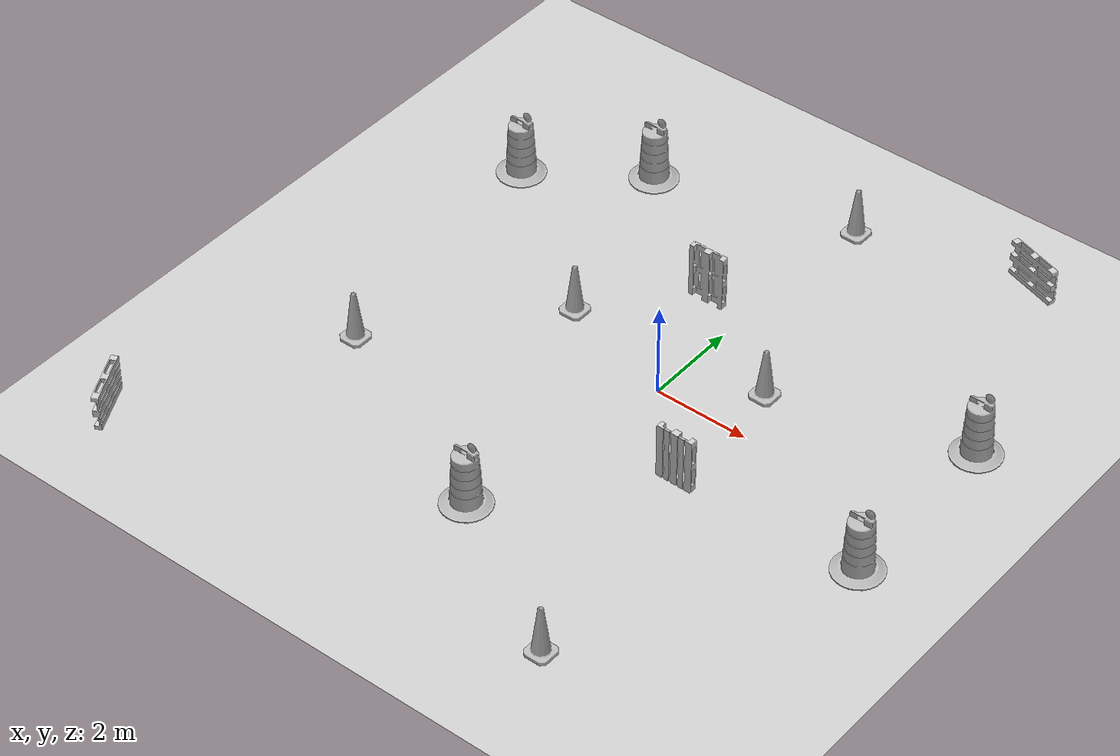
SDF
<sdf version="1.7">
 <world name="default">
  <light name="sun" type="directional">
   <pose>0 0 10 0 -0 0</pose>
   <diffuse>0.8 0.8 0.8 1</diffuse>
   <specular>0.2 0.2 0.2 1</specular>
   <attenuation>
    <range>1000</range>
    <constant>0.9</constant>
    <linear>0.01</linear>
    <quadratic>0.001</quadratic>
   </attenuation>
   <direction>-0.5 0.1 -0.9</direction>
   <spot><inner_angle>0</inner_angle><outer_angle>0</outer_angle><falloff>0</falloff></spot>
  </light>
  <model name="ground_plane">
   <static>1</static>
   <link name="link">
    <collision name="collision">
     <geometry><plane><normal>0 0 1</normal><size>100 100</size></plane></geometry>
     <surface><friction><ode><mu>100</mu><mu2>50</mu2></ode></friction></surface>
    </collision>
    <visual name="visual">
     <cast_shadows>0</cast_shadows>
     <geometry><plane><normal>0 0 1</normal><size>100 100</size></plane></geometry>
     <material>
      <script><uri>file://media/materials/scripts/gazebo.material</uri><name>Gazebo/Grey</name></script>
     </material>
    </visual>
   </link>
  </model>
  <gravity>0 0 -9.8</gravity>
  <magnetic_field>6e-06 2.3e-05 -4.2e-05</magnetic_field>
  <atmosphere type="adiabatic"/>
  <physics type="ode">
   <max_step_size>0.001</max_step_size>
   <real_time_factor>1</real_time_factor>
   <real_time_update_rate>1000</real_time_update_rate>
  </physics>
  <scene><ambient>0.4 0.4 0.4 1</ambient><background>0.7 0.7 0.7 1</background><shadows>1</shadows></scene>
  <audio><device>default</device></audio>
  <spherical_coordinates>
   <surface_model>EARTH_WGS84</surface_model>
   <latitude_deg>0</latitude_deg>
   <longitude_deg>0</longitude_deg>
   <elevation>0</elevation>
   <heading_deg>0</heading_deg>
  </spherical_coordinates>
  <model name="euro_pallet">
   <link name="link">
    <inertial>
     <mass>20</mass>
     <inertia><ixx>2.43</ixx><ixy>0</ixy><ixz>0</ixz><iyy>1.1</iyy><iyz>0</iyz><izz>3.47</izz></inertia>
    </inertial>
    <collision name="collision">
     <pose>0 0 0.05 0 -0 0</pose>
     <geometry><mesh><uri>model://euro_pallet/meshes/pallet.dae</uri><scale>0.1 0.1 0.1</scale></mesh></geometry>
    </collision>
    <visual name="visual">
     <pose>0 0 0.05 0 -0 0</pose>
     <geometry><mesh><uri>model://euro_pallet/meshes/pallet.dae</uri><scale>0.1 0.1 0.1</scale></mesh></geometry>
    </visual>
   </link>
   <pose>1.71967 -1.7044 0.599998 1.5708 4e-06 -0.014009</pose>
  </model>
  <model name="euro_pallet_0">
   <link name="link">
    <inertial>
     <mass>20</mass>
     <inertia><ixx>2.43</ixx><ixy>0</ixy><ixz>0</ixz><iyy>1.1</iyy><iyz>0</iyz><izz>3.47</izz></inertia>
    </inertial>
    <collision name="collision">
     <pose>0 0 0.05 0 -0 0</pose>
     <geometry><mesh><uri>model://euro_pallet/meshes/pallet.dae</uri><scale>0.1 0.1 0.1</scale></mesh></geometry>
    </collision>
    <visual name="visual">
     <pose>0 0 0.05 0 -0 0</pose>
     <geometry><mesh><uri>model://euro_pallet/meshes/pallet.dae</uri><scale>0.1 0.1 0.1</scale></mesh></geometry>
    </visual>
   </link>
   <pose>-0.866377 2.64009 0.59999 -1.57079 -0 -0.013516</pose>
  </model>
  <model name="Construction Barrel">
   <link name="link">
    <inertial>
     <pose>0 0 0.4 0 -0 0</pose>
     <mass>500</mass>
     <inertia><ixx>51.2096</ixx><iyy>51.2096</iyy><izz>25</izz><ixy>0</ixy><ixz>0</ixz><iyz>0</iyz></inertia>
    </inertial>
    <collision name="collision">
     <geometry><mesh><uri>model://construction_barrel/meshes/construction_barrel.dae</uri></mesh></geometry>
    </collision>
    <visual name="visual">
     <geometry><mesh><uri>model://construction_barrel/meshes/construction_barrel.dae</uri></mesh></geometry>
    </visual>
   </link>
   <pose>5.51783 2.27747 -2e-06 -7e-06 -4e-06 -3.2e-05</pose>
  </model>
  <model name="Construction Barrel_0">
   <link name="link">
    <inertial>
     <pose>0 0 0.4 0 -0 0</pose>
     <mass>500</mass>
     <inertia><ixx>51.2096</ixx><iyy>51.2096</iyy><izz>25</izz><ixy>0</ixy><ixz>0</ixz><iyz>0</iyz></inertia>
    </inertial>
    <collision name="collision">
     <geometry><mesh><uri>model://construction_barrel/meshes/construction_barrel.dae</uri></mesh></geometry>
    </collision>
    <visual name="visual">
     <geometry><mesh><uri>model://construction_barrel/meshes/construction_barrel.dae</uri></mesh></geometry>
    </visual>
   </link>
   <pose>-0.841475 -4.47657 -0 0 -0 -3.4e-05</pose>
  </model>
  <model name="Construction Cone">
   <link name="link">
    <collision name="collision">
     <geometry>
      <mesh><scale>10 10 10</scale><uri>model://construction_cone/meshes/construction_cone.dae</uri></mesh>
     </geometry>
    </collision>
    <visual name="visual">
     <geometry>
      <mesh><scale>10 10 10</scale><uri>model://construction_cone/meshes/construction_cone.dae</uri></mesh>
     </geometry>
    </visual>
    <inertial>
     <inertia><ixx>1</ixx><ixy>0</ixy><ixz>0</ixz><iyy>1</iyy><iyz>0</iyz><izz>1</izz></inertia>
     <mass>1</mass>
    </inertial>
   </link>
   <pose>1.60723 1.13478 -0 0 -0 0</pose>
  </model>
  <model name="Construction Cone_0">
   <link name="link">
    <collision name="collision">
     <geometry>
      <mesh><scale>10 10 10</scale><uri>model://construction_cone/meshes/construction_cone.dae</uri></mesh>
     </geometry>
    </collision>
    <visual name="visual">
     <geometry>
      <mesh><scale>10 10 10</scale><uri>model://construction_cone/meshes/construction_cone.dae</uri></mesh>
     </geometry>
    </visual>
    <inertial>
     <inertia><ixx>1</ixx><ixy>0</ixy><ixz>0</ixz><iyy>1</iyy><iyz>0</iyz><izz>1</izz></inertia>
     <mass>1</mass>
    </inertial>
   </link>
   <pose>-2.62061 0.811593 -0 0 -0 0</pose>
  </model>
  <model name="Construction Barrel_1">
   <link name="link">
    <inertial>
     <pose>0 0 0.4 0 -0 0</pose>
     <mass>500</mass>
     <inertia><ixx>51.2096</ixx><iyy>51.2096</iyy><izz>25</izz><ixy>0</ixy><ixz>0</ixz><iyz>0</iyz></inertia>
    </inertial>
    <collision name="collision">
     <geometry><mesh><uri>model://construction_barrel/meshes/construction_barrel.dae</uri></mesh></geometry>
    </collision>
    <visual name="visual">
     <geometry><mesh><uri>model://construction_barrel/meshes/construction_barrel.dae</uri></mesh></geometry>
    </visual>
   </link>
   <pose>5.55568 -1.46955 -1e-06 1e-06 -9e-06 -2.8e-05</pose>
  </model>
  <model name="euro_pallet_1">
   <link name="link">
    <inertial>
     <mass>20</mass>
     <inertia><ixx>2.43</ixx><ixy>0</ixy><ixz>0</ixz><iyy>1.1</iyy><iyz>0</iyz><izz>3.47</izz></inertia>
    </inertial>
    <collision name="collision">
     <pose>0 0 0.05 0 -0 0</pose>
     <geometry><mesh><uri>model://euro_pallet/meshes/pallet.dae</uri><scale>0.1 0.1 0.1</scale></mesh></geometry>
    </collision>
    <visual name="visual">
     <pose>0 0 0.05 0 -0 0</pose>
     <geometry><mesh><uri>model://euro_pallet/meshes/pallet.dae</uri><scale>0.1 0.1 0.1</scale></mesh></geometry>
    </visual>
   </link>
   <pose>3.74624 6.80692 0.3975 -2.63746 1.57079 -1.37123</pose>
  </model>
  <model name="euro_pallet_2">
   <link name="link">
    <inertial>
     <mass>20</mass>
     <inertia><ixx>2.43</ixx><ixy>0</ixy><ixz>0</ixz><iyy>1.1</iyy><iyz>0</iyz><izz>3.47</izz></inertia>
    </inertial>
    <collision name="collision">
     <pose>0 0 0.05 0 -0 0</pose>
     <geometry><mesh><uri>model://euro_pallet/meshes/pallet.dae</uri><scale>0.1 0.1 0.1</scale></mesh></geometry>
    </collision>
    <visual name="visual">
     <pose>0 0 0.05 0 -0 0</pose>
     <geometry><mesh><uri>model://euro_pallet/meshes/pallet.dae</uri><scale>0.1 0.1 0.1</scale></mesh></geometry>
    </visual>
   </link>
   <pose>-7.5718 -6.68374 0.3975 0.198963 1.57079 0.664703</pose>
  </model>
  <model name="Construction Cone_1">
   <link name="link">
    <collision name="collision">
     <geometry>
      <mesh><scale>10 10 10</scale><uri>model://construction_cone/meshes/construction_cone.dae</uri></mesh>
     </geometry>
    </collision>
    <visual name="visual">
     <geometry>
      <mesh><scale>10 10 10</scale><uri>model://construction_cone/meshes/construction_cone.dae</uri></mesh>
     </geometry>
    </visual>
    <inertial>
     <inertia><ixx>1</ixx><ixy>0</ixy><ixz>0</ixz><iyy>1</iyy><iyz>0</iyz><izz>1</izz></inertia>
     <mass>1</mass>
    </inertial>
   </link>
   <pose>2.50924 -6.46756 -5e-06 -4e-06 1e-06 0</pose>
  </model>
  <model name="Construction Barrel_2">
   <link name="link">
    <inertial>
     <pose>0 0 0.4 0 -0 0</pose>
     <mass>500</mass>
     <inertia><ixx>51.2096</ixx><iyy>51.2096</iyy><izz>25</izz><ixy>0</ixy><ixz>0</ixz><iyz>0</iyz></inertia>
    </inertial>
    <collision name="collision">
     <geometry><mesh><uri>model://construction_barrel/meshes/construction_barrel.dae</uri></mesh></geometry>
    </collision>
    <visual name="visual">
     <geometry><mesh><uri>model://construction_barrel/meshes/construction_barrel.dae</uri></mesh></geometry>
    </visual>
   </link>
   <pose>-3.92312 4.92639 -0 0 -0 -3.7e-05</pose>
  </model>
  <model name="Construction Cone_2">
   <link name="link">
    <collision name="collision">
     <geometry>
      <mesh><scale>10 10 10</scale><uri>model://construction_cone/meshes/construction_cone.dae</uri></mesh>
     </geometry>
    </collision>
    <visual name="visual">
     <geometry>
      <mesh><scale>10 10 10</scale><uri>model://construction_cone/meshes/construction_cone.dae</uri></mesh>
     </geometry>
    </visual>
    <inertial>
     <inertia><ixx>1</ixx><ixy>0</ixy><ixz>0</ixz><iyy>1</iyy><iyz>0</iyz><izz>1</izz></inertia>
     <mass>1</mass>
    </inertial>
   </link>
   <pose>0.213569 6.00238 -4e-06 4e-06 -1e-06 0</pose>
  </model>
  <model name="Construction Cone_3">
   <link name="link">
    <collision name="collision">
     <geometry>
      <mesh><scale>10 10 10</scale><uri>model://construction_cone/meshes/construction_cone.dae</uri></mesh>
     </geometry>
    </collision>
    <visual name="visual">
     <geometry>
      <mesh><scale>10 10 10</scale><uri>model://construction_cone/meshes/construction_cone.dae</uri></mesh>
     </geometry>
    </visual>
    <inertial>
     <inertia><ixx>1</ixx><ixy>0</ixy><ixz>0</ixz><iyy>1</iyy><iyz>0</iyz><izz>1</izz></inertia>
     <mass>1</mass>
    </inertial>
   </link>
   <pose>-5.34394 -2.37005 -6e-06 -4e-06 0 0</pose>
  </model>
  <model name="Construction Barrel_3">
   <link name="link">
    <inertial>
     <pose>0 0 0.4 0 -0 0</pose>
     <mass>500</mass>
     <inertia><ixx>51.2096</ixx><iyy>51.2096</iyy><izz>25</izz><ixy>0</ixy><ixz>0</ixz><iyz>0</iyz></inertia>
    </inertial>
    <collision name="collision">
     <geometry><mesh><uri>model://construction_barrel/meshes/construction_barrel.dae</uri></mesh></geometry>
    </collision>
    <visual name="visual">
     <geometry><mesh><uri>model://construction_barrel/meshes/construction_barrel.dae</uri></mesh></geometry>
    </visual>
   </link>
   <pose>-6.09369 3.42501 1e-06 3e-06 2e-06 -2.8e-05</pose>
  </model>
 </world>
</sdf>
